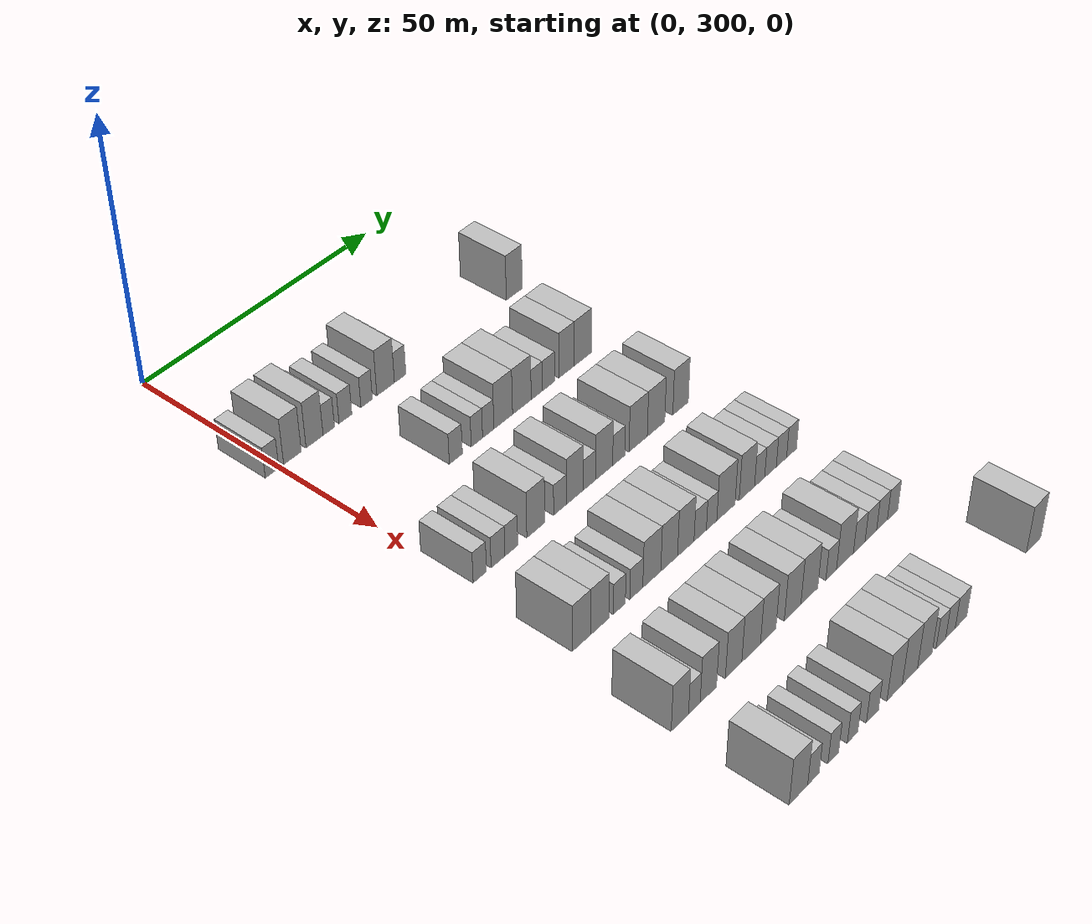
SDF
<sdf version="1.6">
 <world name="default">
  <model name="building_166">
   <static>1</static>
   <pose>25.0000 298.3592 0 0.000000 0.000000 0.000000</pose>
   <link name="link">
    <pose>0 0 3.00 0 0 0</pose>
    <collision name="collision"><geometry><box><size>10.0000 2.7973 6.0000</size></box></geometry></collision>
    <visual name="visual">
     <cast_shadows>0</cast_shadows>
     <geometry><box><size>10.0000 2.7973 6.0000</size></box></geometry>
     <material>
      <script>
       <uri>model://HANNAS_wall/materials/scripts</uri>
       <uri>model://HANNAS_wall/materials/textures</uri>
       <name>vrc/HANNAS_wall</name>
      </script>
     </material>
    </visual>
   </link>
  </model>
  <model name="building_167">
   <static>1</static>
   <pose>25.0000 302.6188 0 0.000000 0.000000 0.000000</pose>
   <link name="link">
    <pose>0 0 4.50 0 0 0</pose>
    <collision name="collision"><geometry><box><size>10.0000 3.7218 9.0000</size></box></geometry></collision>
    <visual name="visual">
     <cast_shadows>0</cast_shadows>
     <geometry><box><size>10.0000 3.7218 9.0000</size></box></geometry>
     <material>
      <script>
       <uri>model://HANNAS_wall/materials/scripts</uri>
       <uri>model://HANNAS_wall/materials/textures</uri>
       <name>vrc/HANNAS_wall</name>
      </script>
     </material>
    </visual>
   </link>
  </model>
  <model name="building_168">
   <static>1</static>
   <pose>25.0000 307.3051 0 0.000000 0.000000 0.000000</pose>
   <link name="link">
    <pose>0 0 4.50 0 0 0</pose>
    <collision name="collision"><geometry><box><size>10.0000 3.6508 9.0000</size></box></geometry></collision>
    <visual name="visual">
     <cast_shadows>0</cast_shadows>
     <geometry><box><size>10.0000 3.6508 9.0000</size></box></geometry>
     <material>
      <script>
       <uri>model://HANNAS_wall/materials/scripts</uri>
       <uri>model://HANNAS_wall/materials/textures</uri>
       <name>vrc/HANNAS_wall</name>
      </script>
     </material>
    </visual>
   </link>
  </model>
  <model name="building_169">
   <static>1</static>
   <pose>25.0000 310.3611 0 0.000000 0.000000 0.000000</pose>
   <link name="link">
    <pose>0 0 3.00 0 0 0</pose>
    <collision name="collision"><geometry><box><size>10.0000 2.4613 6.0000</size></box></geometry></collision>
    <visual name="visual">
     <cast_shadows>0</cast_shadows>
     <geometry><box><size>10.0000 2.4613 6.0000</size></box></geometry>
     <material>
      <script>
       <uri>model://HANNAS_wall/materials/scripts</uri>
       <uri>model://HANNAS_wall/materials/textures</uri>
       <name>vrc/HANNAS_wall</name>
      </script>
     </material>
    </visual>
   </link>
  </model>
  <model name="building_170">
   <static>1</static>
   <pose>25.0000 313.9952 0 0.000000 0.000000 0.000000</pose>
   <link name="link">
    <pose>0 0 3.00 0 0 0</pose>
    <collision name="collision"><geometry><box><size>10.0000 2.8068 6.0000</size></box></geometry></collision>
    <visual name="visual">
     <cast_shadows>0</cast_shadows>
     <geometry><box><size>10.0000 2.8068 6.0000</size></box></geometry>
     <material>
      <script>
       <uri>model://HANNAS_wall/materials/scripts</uri>
       <uri>model://HANNAS_wall/materials/textures</uri>
       <name>vrc/HANNAS_wall</name>
      </script>
     </material>
    </visual>
   </link>
  </model>
  <model name="building_171">
   <static>1</static>
   <pose>25.0000 318.6783 0 0.000000 0.000000 0.000000</pose>
   <link name="link">
    <pose>0 0 3.00 0 0 0</pose>
    <collision name="collision"><geometry><box><size>10.0000 2.5593 6.0000</size></box></geometry></collision>
    <visual name="visual">
     <cast_shadows>0</cast_shadows>
     <geometry><box><size>10.0000 2.5593 6.0000</size></box></geometry>
     <material>
      <script>
       <uri>model://HANNAS_wall/materials/scripts</uri>
       <uri>model://HANNAS_wall/materials/textures</uri>
       <name>vrc/HANNAS_wall</name>
      </script>
     </material>
    </visual>
   </link>
  </model>
  <model name="building_172">
   <static>1</static>
   <pose>25.0000 322.9405 0 0.000000 0.000000 0.000000</pose>
   <link name="link">
    <pose>0 0 4.50 0 0 0</pose>
    <collision name="collision"><geometry><box><size>10.0000 3.9652 9.0000</size></box></geometry></collision>
    <visual name="visual">
     <cast_shadows>0</cast_shadows>
     <geometry><box><size>10.0000 3.9652 9.0000</size></box></geometry>
     <material>
      <script>
       <uri>model://HANNAS_wall/materials/scripts</uri>
       <uri>model://HANNAS_wall/materials/textures</uri>
       <name>vrc/HANNAS_wall</name>
      </script>
     </material>
    </visual>
   </link>
  </model>
  <model name="building_173">
   <static>1</static>
   <pose>25.0000 326.2326 0 0.000000 0.000000 0.000000</pose>
   <link name="link">
    <pose>0 0 3.00 0 0 0</pose>
    <collision name="collision"><geometry><box><size>10.0000 2.6189 6.0000</size></box></geometry></collision>
    <visual name="visual">
     <cast_shadows>0</cast_shadows>
     <geometry><box><size>10.0000 2.6189 6.0000</size></box></geometry>
     <material>
      <script>
       <uri>model://HANNAS_wall/materials/scripts</uri>
       <uri>model://HANNAS_wall/materials/textures</uri>
       <name>vrc/HANNAS_wall</name>
      </script>
     </material>
    </visual>
   </link>
  </model>
  <model name="building_174">
   <static>1</static>
   <pose>25.0000 353.5034 0 0.000000 0.000000 0.000000</pose>
   <link name="link">
    <pose>0 0 4.50 0 0 0</pose>
    <collision name="collision"><geometry><box><size>10.0000 3.9742 9.0000</size></box></geometry></collision>
    <visual name="visual">
     <cast_shadows>0</cast_shadows>
     <geometry><box><size>10.0000 3.9742 9.0000</size></box></geometry>
     <material>
      <script>
       <uri>model://HANNAS_wall/materials/scripts</uri>
       <uri>model://HANNAS_wall/materials/textures</uri>
       <name>vrc/HANNAS_wall</name>
      </script>
     </material>
    </visual>
   </link>
  </model>
  <model name="building_336">
   <static>1</static>
   <pose>44.0000 317.9940 0 0.000000 0.000000 0.000000</pose>
   <link name="link">
    <pose>0 0 3.00 0 0 0</pose>
    <collision name="collision"><geometry><box><size>10.0000 2.9352 6.0000</size></box></geometry></collision>
    <visual name="visual">
     <cast_shadows>0</cast_shadows>
     <geometry><box><size>10.0000 2.9352 6.0000</size></box></geometry>
     <material>
      <script>
       <uri>model://HANNAS_wall/materials/scripts</uri>
       <uri>model://HANNAS_wall/materials/textures</uri>
       <name>vrc/HANNAS_wall</name>
      </script>
     </material>
    </visual>
   </link>
  </model>
  <model name="building_337">
   <static>1</static>
   <pose>44.0000 322.7504 0 0.000000 0.000000 0.000000</pose>
   <link name="link">
    <pose>0 0 3.00 0 0 0</pose>
    <collision name="collision"><geometry><box><size>10.0000 2.5776 6.0000</size></box></geometry></collision>
    <visual name="visual">
     <cast_shadows>0</cast_shadows>
     <geometry><box><size>10.0000 2.5776 6.0000</size></box></geometry>
     <material>
      <script>
       <uri>model://HANNAS_wall/materials/scripts</uri>
       <uri>model://HANNAS_wall/materials/textures</uri>
       <name>vrc/HANNAS_wall</name>
      </script>
     </material>
    </visual>
   </link>
  </model>
  <model name="building_338">
   <static>1</static>
   <pose>44.0000 325.3466 0 0.000000 0.000000 0.000000</pose>
   <link name="link">
    <pose>0 0 3.00 0 0 0</pose>
    <collision name="collision"><geometry><box><size>10.0000 2.6147 6.0000</size></box></geometry></collision>
    <visual name="visual">
     <cast_shadows>0</cast_shadows>
     <geometry><box><size>10.0000 2.6147 6.0000</size></box></geometry>
     <material>
      <script>
       <uri>model://HANNAS_wall/materials/scripts</uri>
       <uri>model://HANNAS_wall/materials/textures</uri>
       <name>vrc/HANNAS_wall</name>
      </script>
     </material>
    </visual>
   </link>
  </model>
  <model name="building_339">
   <static>1</static>
   <pose>44.0000 328.8182 0 0.000000 0.000000 0.000000</pose>
   <link name="link">
    <pose>0 0 4.50 0 0 0</pose>
    <collision name="collision"><geometry><box><size>10.0000 4.3285 9.0000</size></box></geometry></collision>
    <visual name="visual">
     <cast_shadows>0</cast_shadows>
     <geometry><box><size>10.0000 4.3285 9.0000</size></box></geometry>
     <material>
      <script>
       <uri>model://HANNAS_wall/materials/scripts</uri>
       <uri>model://HANNAS_wall/materials/textures</uri>
       <name>vrc/HANNAS_wall</name>
      </script>
     </material>
    </visual>
   </link>
  </model>
  <model name="building_340">
   <static>1</static>
   <pose>44.0000 333.1827 0 0.000000 0.000000 0.000000</pose>
   <link name="link">
    <pose>0 0 4.50 0 0 0</pose>
    <collision name="collision"><geometry><box><size>10.0000 4.4005 9.0000</size></box></geometry></collision>
    <visual name="visual">
     <cast_shadows>0</cast_shadows>
     <geometry><box><size>10.0000 4.4005 9.0000</size></box></geometry>
     <material>
      <script>
       <uri>model://HANNAS_wall/materials/scripts</uri>
       <uri>model://HANNAS_wall/materials/textures</uri>
       <name>vrc/HANNAS_wall</name>
      </script>
     </material>
    </visual>
   </link>
  </model>
  <model name="building_341">
   <static>1</static>
   <pose>44.0000 336.7279 0 0.000000 0.000000 0.000000</pose>
   <link name="link">
    <pose>0 0 3.00 0 0 0</pose>
    <collision name="collision"><geometry><box><size>10.0000 2.6898 6.0000</size></box></geometry></collision>
    <visual name="visual">
     <cast_shadows>0</cast_shadows>
     <geometry><box><size>10.0000 2.6898 6.0000</size></box></geometry>
     <material>
      <script>
       <uri>model://HANNAS_wall/materials/scripts</uri>
       <uri>model://HANNAS_wall/materials/textures</uri>
       <name>vrc/HANNAS_wall</name>
      </script>
     </material>
    </visual>
   </link>
  </model>
  <model name="building_342">
   <static>1</static>
   <pose>44.0000 339.5661 0 0.000000 0.000000 0.000000</pose>
   <link name="link">
    <pose>0 0 3.00 0 0 0</pose>
    <collision name="collision"><geometry><box><size>10.0000 2.9867 6.0000</size></box></geometry></collision>
    <visual name="visual">
     <cast_shadows>0</cast_shadows>
     <geometry><box><size>10.0000 2.9867 6.0000</size></box></geometry>
     <material>
      <script>
       <uri>model://HANNAS_wall/materials/scripts</uri>
       <uri>model://HANNAS_wall/materials/textures</uri>
       <name>vrc/HANNAS_wall</name>
      </script>
     </material>
    </visual>
   </link>
  </model>
  <model name="building_343">
   <static>1</static>
   <pose>44.0000 343.9354 0 0.000000 0.000000 0.000000</pose>
   <link name="link">
    <pose>0 0 4.50 0 0 0</pose>
    <collision name="collision"><geometry><box><size>10.0000 3.7518 9.0000</size></box></geometry></collision>
    <visual name="visual">
     <cast_shadows>0</cast_shadows>
     <geometry><box><size>10.0000 3.7518 9.0000</size></box></geometry>
     <material>
      <script>
       <uri>model://HANNAS_wall/materials/scripts</uri>
       <uri>model://HANNAS_wall/materials/textures</uri>
       <name>vrc/HANNAS_wall</name>
      </script>
     </material>
    </visual>
   </link>
  </model>
  <model name="building_344">
   <static>1</static>
   <pose>44.0000 347.9292 0 0.000000 0.000000 0.000000</pose>
   <link name="link">
    <pose>0 0 4.50 0 0 0</pose>
    <collision name="collision"><geometry><box><size>10.0000 4.2359 9.0000</size></box></geometry></collision>
    <visual name="visual">
     <cast_shadows>0</cast_shadows>
     <geometry><box><size>10.0000 4.2359 9.0000</size></box></geometry>
     <material>
      <script>
       <uri>model://HANNAS_wall/materials/scripts</uri>
       <uri>model://HANNAS_wall/materials/textures</uri>
       <name>vrc/HANNAS_wall</name>
      </script>
     </material>
    </visual>
   </link>
  </model>
  <model name="building_516">
   <static>1</static>
   <pose>63.0000 301.8173 0 0.000000 0.000000 0.000000</pose>
   <link name="link">
    <pose>0 0 3.00 0 0 0</pose>
    <collision name="collision"><geometry><box><size>10.0000 2.8320 6.0000</size></box></geometry></collision>
    <visual name="visual">
     <cast_shadows>0</cast_shadows>
     <geometry><box><size>10.0000 2.8320 6.0000</size></box></geometry>
     <material>
      <script>
       <uri>model://HANNAS_wall/materials/scripts</uri>
       <uri>model://HANNAS_wall/materials/textures</uri>
       <name>vrc/HANNAS_wall</name>
      </script>
     </material>
    </visual>
   </link>
  </model>
  <model name="building_517">
   <static>1</static>
   <pose>63.0000 305.7291 0 0.000000 0.000000 0.000000</pose>
   <link name="link">
    <pose>0 0 3.00 0 0 0</pose>
    <collision name="collision"><geometry><box><size>10.0000 2.9916 6.0000</size></box></geometry></collision>
    <visual name="visual">
     <cast_shadows>0</cast_shadows>
     <geometry><box><size>10.0000 2.9916 6.0000</size></box></geometry>
     <material>
      <script>
       <uri>model://HANNAS_wall/materials/scripts</uri>
       <uri>model://HANNAS_wall/materials/textures</uri>
       <name>vrc/HANNAS_wall</name>
      </script>
     </material>
    </visual>
   </link>
  </model>
  <model name="building_518">
   <static>1</static>
   <pose>63.0000 308.6289 0 0.000000 0.000000 0.000000</pose>
   <link name="link">
    <pose>0 0 3.00 0 0 0</pose>
    <collision name="collision"><geometry><box><size>10.0000 2.8080 6.0000</size></box></geometry></collision>
    <visual name="visual">
     <cast_shadows>0</cast_shadows>
     <geometry><box><size>10.0000 2.8080 6.0000</size></box></geometry>
     <material>
      <script>
       <uri>model://HANNAS_wall/materials/scripts</uri>
       <uri>model://HANNAS_wall/materials/textures</uri>
       <name>vrc/HANNAS_wall</name>
      </script>
     </material>
    </visual>
   </link>
  </model>
  <model name="building_519">
   <static>1</static>
   <pose>63.0000 314.0401 0 0.000000 0.000000 0.000000</pose>
   <link name="link">
    <pose>0 0 4.50 0 0 0</pose>
    <collision name="collision"><geometry><box><size>10.0000 4.0143 9.0000</size></box></geometry></collision>
    <visual name="visual">
     <cast_shadows>0</cast_shadows>
     <geometry><box><size>10.0000 4.0143 9.0000</size></box></geometry>
     <material>
      <script>
       <uri>model://HANNAS_wall/materials/scripts</uri>
       <uri>model://HANNAS_wall/materials/textures</uri>
       <name>vrc/HANNAS_wall</name>
      </script>
     </material>
    </visual>
   </link>
  </model>
  <model name="building_520">
   <static>1</static>
   <pose>63.0000 319.4968 0 0.000000 0.000000 0.000000</pose>
   <link name="link">
    <pose>0 0 3.00 0 0 0</pose>
    <collision name="collision"><geometry><box><size>10.0000 2.8991 6.0000</size></box></geometry></collision>
    <visual name="visual">
     <cast_shadows>0</cast_shadows>
     <geometry><box><size>10.0000 2.8991 6.0000</size></box></geometry>
     <material>
      <script>
       <uri>model://HANNAS_wall/materials/scripts</uri>
       <uri>model://HANNAS_wall/materials/textures</uri>
       <name>vrc/HANNAS_wall</name>
      </script>
     </material>
    </visual>
   </link>
  </model>
  <model name="building_521">
   <static>1</static>
   <pose>63.0000 322.8800 0 0.000000 0.000000 0.000000</pose>
   <link name="link">
    <pose>0 0 4.50 0 0 0</pose>
    <collision name="collision"><geometry><box><size>10.0000 3.8673 9.0000</size></box></geometry></collision>
    <visual name="visual">
     <cast_shadows>0</cast_shadows>
     <geometry><box><size>10.0000 3.8673 9.0000</size></box></geometry>
     <material>
      <script>
       <uri>model://HANNAS_wall/materials/scripts</uri>
       <uri>model://HANNAS_wall/materials/textures</uri>
       <name>vrc/HANNAS_wall</name>
      </script>
     </material>
    </visual>
   </link>
  </model>
  <model name="building_522">
   <static>1</static>
   <pose>63.0000 326.2391 0 0.000000 0.000000 0.000000</pose>
   <link name="link">
    <pose>0 0 3.00 0 0 0</pose>
    <collision name="collision"><geometry><box><size>10.0000 2.8509 6.0000</size></box></geometry></collision>
    <visual name="visual">
     <cast_shadows>0</cast_shadows>
     <geometry><box><size>10.0000 2.8509 6.0000</size></box></geometry>
     <material>
      <script>
       <uri>model://HANNAS_wall/materials/scripts</uri>
       <uri>model://HANNAS_wall/materials/textures</uri>
       <name>vrc/HANNAS_wall</name>
      </script>
     </material>
    </visual>
   </link>
  </model>
  <model name="building_523">
   <static>1</static>
   <pose>63.0000 329.7063 0 0.000000 0.000000 0.000000</pose>
   <link name="link">
    <pose>0 0 4.50 0 0 0</pose>
    <collision name="collision"><geometry><box><size>10.0000 4.0834 9.0000</size></box></geometry></collision>
    <visual name="visual">
     <cast_shadows>0</cast_shadows>
     <geometry><box><size>10.0000 4.0834 9.0000</size></box></geometry>
     <material>
      <script>
       <uri>model://HANNAS_wall/materials/scripts</uri>
       <uri>model://HANNAS_wall/materials/textures</uri>
       <name>vrc/HANNAS_wall</name>
      </script>
     </material>
    </visual>
   </link>
  </model>
  <model name="building_524">
   <static>1</static>
   <pose>63.0000 333.2103 0 0.000000 0.000000 0.000000</pose>
   <link name="link">
    <pose>0 0 3.00 0 0 0</pose>
    <collision name="collision"><geometry><box><size>10.0000 2.9246 6.0000</size></box></geometry></collision>
    <visual name="visual">
     <cast_shadows>0</cast_shadows>
     <geometry><box><size>10.0000 2.9246 6.0000</size></box></geometry>
     <material>
      <script>
       <uri>model://HANNAS_wall/materials/scripts</uri>
       <uri>model://HANNAS_wall/materials/textures</uri>
       <name>vrc/HANNAS_wall</name>
      </script>
     </material>
    </visual>
   </link>
  </model>
  <model name="building_525">
   <static>1</static>
   <pose>63.0000 337.8902 0 0.000000 0.000000 0.000000</pose>
   <link name="link">
    <pose>0 0 4.50 0 0 0</pose>
    <collision name="collision"><geometry><box><size>10.0000 4.4352 9.0000</size></box></geometry></collision>
    <visual name="visual">
     <cast_shadows>0</cast_shadows>
     <geometry><box><size>10.0000 4.4352 9.0000</size></box></geometry>
     <material>
      <script>
       <uri>model://HANNAS_wall/materials/scripts</uri>
       <uri>model://HANNAS_wall/materials/textures</uri>
       <name>vrc/HANNAS_wall</name>
      </script>
     </material>
    </visual>
   </link>
  </model>
  <model name="building_526">
   <static>1</static>
   <pose>63.0000 342.2646 0 0.000000 0.000000 0.000000</pose>
   <link name="link">
    <pose>0 0 4.50 0 0 0</pose>
    <collision name="collision"><geometry><box><size>10.0000 4.3136 9.0000</size></box></geometry></collision>
    <visual name="visual">
     <cast_shadows>0</cast_shadows>
     <geometry><box><size>10.0000 4.3136 9.0000</size></box></geometry>
     <material>
      <script>
       <uri>model://HANNAS_wall/materials/scripts</uri>
       <uri>model://HANNAS_wall/materials/textures</uri>
       <name>vrc/HANNAS_wall</name>
      </script>
     </material>
    </visual>
   </link>
  </model>
  <model name="building_527">
   <static>1</static>
   <pose>63.0000 348.3710 0 0.000000 0.000000 0.000000</pose>
   <link name="link">
    <pose>0 0 4.50 0 0 0</pose>
    <collision name="collision"><geometry><box><size>10.0000 3.8993 9.0000</size></box></geometry></collision>
    <visual name="visual">
     <cast_shadows>0</cast_shadows>
     <geometry><box><size>10.0000 3.8993 9.0000</size></box></geometry>
     <material>
      <script>
       <uri>model://HANNAS_wall/materials/scripts</uri>
       <uri>model://HANNAS_wall/materials/textures</uri>
       <name>vrc/HANNAS_wall</name>
      </script>
     </material>
    </visual>
   </link>
  </model>
  <model name="building_684">
   <static>1</static>
   <pose>82.0000 301.2287 0 0.000000 0.000000 0.000000</pose>
   <link name="link">
    <pose>0 0 4.50 0 0 0</pose>
    <collision name="collision"><geometry><box><size>10.0000 3.9058 9.0000</size></box></geometry></collision>
    <visual name="visual">
     <cast_shadows>0</cast_shadows>
     <geometry><box><size>10.0000 3.9058 9.0000</size></box></geometry>
     <material>
      <script>
       <uri>model://HANNAS_wall/materials/scripts</uri>
       <uri>model://HANNAS_wall/materials/textures</uri>
       <name>vrc/HANNAS_wall</name>
      </script>
     </material>
    </visual>
   </link>
  </model>
  <model name="building_685">
   <static>1</static>
   <pose>82.0000 305.1975 0 0.000000 0.000000 0.000000</pose>
   <link name="link">
    <pose>0 0 4.50 0 0 0</pose>
    <collision name="collision"><geometry><box><size>10.0000 4.0317 9.0000</size></box></geometry></collision>
    <visual name="visual">
     <cast_shadows>0</cast_shadows>
     <geometry><box><size>10.0000 4.0317 9.0000</size></box></geometry>
     <material>
      <script>
       <uri>model://HANNAS_wall/materials/scripts</uri>
       <uri>model://HANNAS_wall/materials/textures</uri>
       <name>vrc/HANNAS_wall</name>
      </script>
     </material>
    </visual>
   </link>
  </model>
  <model name="building_686">
   <static>1</static>
   <pose>82.0000 309.5510 0 0.000000 0.000000 0.000000</pose>
   <link name="link">
    <pose>0 0 3.00 0 0 0</pose>
    <collision name="collision"><geometry><box><size>10.0000 2.6753 6.0000</size></box></geometry></collision>
    <visual name="visual">
     <cast_shadows>0</cast_shadows>
     <geometry><box><size>10.0000 2.6753 6.0000</size></box></geometry>
     <material>
      <script>
       <uri>model://HANNAS_wall/materials/scripts</uri>
       <uri>model://HANNAS_wall/materials/textures</uri>
       <name>vrc/HANNAS_wall</name>
      </script>
     </material>
    </visual>
   </link>
  </model>
  <model name="building_687">
   <static>1</static>
   <pose>82.0000 313.3539 0 0.000000 0.000000 0.000000</pose>
   <link name="link">
    <pose>0 0 3.00 0 0 0</pose>
    <collision name="collision"><geometry><box><size>10.0000 2.9305 6.0000</size></box></geometry></collision>
    <visual name="visual">
     <cast_shadows>0</cast_shadows>
     <geometry><box><size>10.0000 2.9305 6.0000</size></box></geometry>
     <material>
      <script>
       <uri>model://HANNAS_wall/materials/scripts</uri>
       <uri>model://HANNAS_wall/materials/textures</uri>
       <name>vrc/HANNAS_wall</name>
      </script>
     </material>
    </visual>
   </link>
  </model>
  <model name="building_688">
   <static>1</static>
   <pose>82.0000 316.8846 0 0.000000 0.000000 0.000000</pose>
   <link name="link">
    <pose>0 0 4.50 0 0 0</pose>
    <collision name="collision"><geometry><box><size>10.0000 4.1307 9.0000</size></box></geometry></collision>
    <visual name="visual">
     <cast_shadows>0</cast_shadows>
     <geometry><box><size>10.0000 4.1307 9.0000</size></box></geometry>
     <material>
      <script>
       <uri>model://HANNAS_wall/materials/scripts</uri>
       <uri>model://HANNAS_wall/materials/textures</uri>
       <name>vrc/HANNAS_wall</name>
      </script>
     </material>
    </visual>
   </link>
  </model>
  <model name="building_689">
   <static>1</static>
   <pose>82.0000 320.8887 0 0.000000 0.000000 0.000000</pose>
   <link name="link">
    <pose>0 0 4.50 0 0 0</pose>
    <collision name="collision"><geometry><box><size>10.0000 3.8775 9.0000</size></box></geometry></collision>
    <visual name="visual">
     <cast_shadows>0</cast_shadows>
     <geometry><box><size>10.0000 3.8775 9.0000</size></box></geometry>
     <material>
      <script>
       <uri>model://HANNAS_wall/materials/scripts</uri>
       <uri>model://HANNAS_wall/materials/textures</uri>
       <name>vrc/HANNAS_wall</name>
      </script>
     </material>
    </visual>
   </link>
  </model>
  <model name="building_690">
   <static>1</static>
   <pose>82.0000 324.7687 0 0.000000 0.000000 0.000000</pose>
   <link name="link">
    <pose>0 0 4.50 0 0 0</pose>
    <collision name="collision"><geometry><box><size>10.0000 3.8824 9.0000</size></box></geometry></collision>
    <visual name="visual">
     <cast_shadows>0</cast_shadows>
     <geometry><box><size>10.0000 3.8824 9.0000</size></box></geometry>
     <material>
      <script>
       <uri>model://HANNAS_wall/materials/scripts</uri>
       <uri>model://HANNAS_wall/materials/textures</uri>
       <name>vrc/HANNAS_wall</name>
      </script>
     </material>
    </visual>
   </link>
  </model>
  <model name="building_691">
   <static>1</static>
   <pose>82.0000 328.1856 0 0.000000 0.000000 0.000000</pose>
   <link name="link">
    <pose>0 0 3.00 0 0 0</pose>
    <collision name="collision"><geometry><box><size>10.0000 2.9515 6.0000</size></box></geometry></collision>
    <visual name="visual">
     <cast_shadows>0</cast_shadows>
     <geometry><box><size>10.0000 2.9515 6.0000</size></box></geometry>
     <material>
      <script>
       <uri>model://HANNAS_wall/materials/scripts</uri>
       <uri>model://HANNAS_wall/materials/textures</uri>
       <name>vrc/HANNAS_wall</name>
      </script>
     </material>
    </visual>
   </link>
  </model>
  <model name="building_692">
   <static>1</static>
   <pose>82.0000 330.9195 0 0.000000 0.000000 0.000000</pose>
   <link name="link">
    <pose>0 0 3.00 0 0 0</pose>
    <collision name="collision"><geometry><box><size>10.0000 2.5163 6.0000</size></box></geometry></collision>
    <visual name="visual">
     <cast_shadows>0</cast_shadows>
     <geometry><box><size>10.0000 2.5163 6.0000</size></box></geometry>
     <material>
      <script>
       <uri>model://HANNAS_wall/materials/scripts</uri>
       <uri>model://HANNAS_wall/materials/textures</uri>
       <name>vrc/HANNAS_wall</name>
      </script>
     </material>
    </visual>
   </link>
  </model>
  <model name="building_693">
   <static>1</static>
   <pose>82.0000 334.4066 0 0.000000 0.000000 0.000000</pose>
   <link name="link">
    <pose>0 0 4.50 0 0 0</pose>
    <collision name="collision"><geometry><box><size>10.0000 4.4580 9.0000</size></box></geometry></collision>
    <visual name="visual">
     <cast_shadows>0</cast_shadows>
     <geometry><box><size>10.0000 4.4580 9.0000</size></box></geometry>
     <material>
      <script>
       <uri>model://HANNAS_wall/materials/scripts</uri>
       <uri>model://HANNAS_wall/materials/textures</uri>
       <name>vrc/HANNAS_wall</name>
      </script>
     </material>
    </visual>
   </link>
  </model>
  <model name="building_694">
   <static>1</static>
   <pose>82.0000 339.5544 0 0.000000 0.000000 0.000000</pose>
   <link name="link">
    <pose>0 0 4.50 0 0 0</pose>
    <collision name="collision"><geometry><box><size>10.0000 3.8377 9.0000</size></box></geometry></collision>
    <visual name="visual">
     <cast_shadows>0</cast_shadows>
     <geometry><box><size>10.0000 3.8377 9.0000</size></box></geometry>
     <material>
      <script>
       <uri>model://HANNAS_wall/materials/scripts</uri>
       <uri>model://HANNAS_wall/materials/textures</uri>
       <name>vrc/HANNAS_wall</name>
      </script>
     </material>
    </visual>
   </link>
  </model>
  <model name="building_695">
   <static>1</static>
   <pose>82.0000 342.7477 0 0.000000 0.000000 0.000000</pose>
   <link name="link">
    <pose>0 0 3.00 0 0 0</pose>
    <collision name="collision"><geometry><box><size>10.0000 2.5488 6.0000</size></box></geometry></collision>
    <visual name="visual">
     <cast_shadows>0</cast_shadows>
     <geometry><box><size>10.0000 2.5488 6.0000</size></box></geometry>
     <material>
      <script>
       <uri>model://HANNAS_wall/materials/scripts</uri>
       <uri>model://HANNAS_wall/materials/textures</uri>
       <name>vrc/HANNAS_wall</name>
      </script>
     </material>
    </visual>
   </link>
  </model>
  <model name="building_696">
   <static>1</static>
   <pose>82.0000 345.5026 0 0.000000 0.000000 0.000000</pose>
   <link name="link">
    <pose>0 0 3.00 0 0 0</pose>
    <collision name="collision"><geometry><box><size>10.0000 2.9610 6.0000</size></box></geometry></collision>
    <visual name="visual">
     <cast_shadows>0</cast_shadows>
     <geometry><box><size>10.0000 2.9610 6.0000</size></box></geometry>
     <material>
      <script>
       <uri>model://HANNAS_wall/materials/scripts</uri>
       <uri>model://HANNAS_wall/materials/textures</uri>
       <name>vrc/HANNAS_wall</name>
      </script>
     </material>
    </visual>
   </link>
  </model>
  <model name="building_697">
   <static>1</static>
   <pose>82.0000 348.3018 0 0.000000 0.000000 0.000000</pose>
   <link name="link">
    <pose>0 0 3.00 0 0 0</pose>
    <collision name="collision"><geometry><box><size>10.0000 2.6374 6.0000</size></box></geometry></collision>
    <visual name="visual">
     <cast_shadows>0</cast_shadows>
     <geometry><box><size>10.0000 2.6374 6.0000</size></box></geometry>
     <material>
      <script>
       <uri>model://HANNAS_wall/materials/scripts</uri>
       <uri>model://HANNAS_wall/materials/textures</uri>
       <name>vrc/HANNAS_wall</name>
      </script>
     </material>
    </visual>
   </link>
  </model>
  <model name="building_698">
   <static>1</static>
   <pose>82.0000 350.8970 0 0.000000 0.000000 0.000000</pose>
   <link name="link">
    <pose>0 0 3.00 0 0 0</pose>
    <collision name="collision"><geometry><box><size>10.0000 2.5532 6.0000</size></box></geometry></collision>
    <visual name="visual">
     <cast_shadows>0</cast_shadows>
     <geometry><box><size>10.0000 2.5532 6.0000</size></box></geometry>
     <material>
      <script>
       <uri>model://HANNAS_wall/materials/scripts</uri>
       <uri>model://HANNAS_wall/materials/textures</uri>
       <name>vrc/HANNAS_wall</name>
      </script>
     </material>
    </visual>
   </link>
  </model>
  <model name="building_868">
   <static>1</static>
   <pose>101.0000 298.5542 0 0.000000 0.000000 0.000000</pose>
   <link name="link">
    <pose>0 0 4.50 0 0 0</pose>
    <collision name="collision"><geometry><box><size>10.0000 3.7506 9.0000</size></box></geometry></collision>
    <visual name="visual">
     <cast_shadows>0</cast_shadows>
     <geometry><box><size>10.0000 3.7506 9.0000</size></box></geometry>
     <material>
      <script>
       <uri>model://HANNAS_wall/materials/scripts</uri>
       <uri>model://HANNAS_wall/materials/textures</uri>
       <name>vrc/HANNAS_wall</name>
      </script>
     </material>
    </visual>
   </link>
  </model>
  <model name="building_869">
   <static>1</static>
   <pose>101.0000 301.7054 0 0.000000 0.000000 0.000000</pose>
   <link name="link">
    <pose>0 0 3.00 0 0 0</pose>
    <collision name="collision"><geometry><box><size>10.0000 2.5519 6.0000</size></box></geometry></collision>
    <visual name="visual">
     <cast_shadows>0</cast_shadows>
     <geometry><box><size>10.0000 2.5519 6.0000</size></box></geometry>
     <material>
      <script>
       <uri>model://HANNAS_wall/materials/scripts</uri>
       <uri>model://HANNAS_wall/materials/textures</uri>
       <name>vrc/HANNAS_wall</name>
      </script>
     </material>
    </visual>
   </link>
  </model>
  <model name="building_870">
   <static>1</static>
   <pose>101.0000 304.8027 0 0.000000 0.000000 0.000000</pose>
   <link name="link">
    <pose>0 0 4.50 0 0 0</pose>
    <collision name="collision"><geometry><box><size>10.0000 3.6427 9.0000</size></box></geometry></collision>
    <visual name="visual">
     <cast_shadows>0</cast_shadows>
     <geometry><box><size>10.0000 3.6427 9.0000</size></box></geometry>
     <material>
      <script>
       <uri>model://HANNAS_wall/materials/scripts</uri>
       <uri>model://HANNAS_wall/materials/textures</uri>
       <name>vrc/HANNAS_wall</name>
      </script>
     </material>
    </visual>
   </link>
  </model>
  <model name="building_871">
   <static>1</static>
   <pose>101.0000 310.4875 0 0.000000 0.000000 0.000000</pose>
   <link name="link">
    <pose>0 0 4.50 0 0 0</pose>
    <collision name="collision"><geometry><box><size>10.0000 3.7268 9.0000</size></box></geometry></collision>
    <visual name="visual">
     <cast_shadows>0</cast_shadows>
     <geometry><box><size>10.0000 3.7268 9.0000</size></box></geometry>
     <material>
      <script>
       <uri>model://HANNAS_wall/materials/scripts</uri>
       <uri>model://HANNAS_wall/materials/textures</uri>
       <name>vrc/HANNAS_wall</name>
      </script>
     </material>
    </visual>
   </link>
  </model>
  <model name="building_872">
   <static>1</static>
   <pose>101.0000 314.5076 0 0.000000 0.000000 0.000000</pose>
   <link name="link">
    <pose>0 0 4.50 0 0 0</pose>
    <collision name="collision"><geometry><box><size>10.0000 4.3134 9.0000</size></box></geometry></collision>
    <visual name="visual">
     <cast_shadows>0</cast_shadows>
     <geometry><box><size>10.0000 4.3134 9.0000</size></box></geometry>
     <material>
      <script>
       <uri>model://HANNAS_wall/materials/scripts</uri>
       <uri>model://HANNAS_wall/materials/textures</uri>
       <name>vrc/HANNAS_wall</name>
      </script>
     </material>
    </visual>
   </link>
  </model>
  <model name="building_873">
   <static>1</static>
   <pose>101.0000 318.4715 0 0.000000 0.000000 0.000000</pose>
   <link name="link">
    <pose>0 0 4.50 0 0 0</pose>
    <collision name="collision"><geometry><box><size>10.0000 3.6144 9.0000</size></box></geometry></collision>
    <visual name="visual">
     <cast_shadows>0</cast_shadows>
     <geometry><box><size>10.0000 3.6144 9.0000</size></box></geometry>
     <material>
      <script>
       <uri>model://HANNAS_wall/materials/scripts</uri>
       <uri>model://HANNAS_wall/materials/textures</uri>
       <name>vrc/HANNAS_wall</name>
      </script>
     </material>
    </visual>
   </link>
  </model>
  <model name="building_874">
   <static>1</static>
   <pose>101.0000 324.2664 0 0.000000 0.000000 0.000000</pose>
   <link name="link">
    <pose>0 0 4.50 0 0 0</pose>
    <collision name="collision"><geometry><box><size>10.0000 3.9755 9.0000</size></box></geometry></collision>
    <visual name="visual">
     <cast_shadows>0</cast_shadows>
     <geometry><box><size>10.0000 3.9755 9.0000</size></box></geometry>
     <material>
      <script>
       <uri>model://HANNAS_wall/materials/scripts</uri>
       <uri>model://HANNAS_wall/materials/textures</uri>
       <name>vrc/HANNAS_wall</name>
      </script>
     </material>
    </visual>
   </link>
  </model>
  <model name="building_875">
   <static>1</static>
   <pose>101.0000 328.3099 0 0.000000 0.000000 0.000000</pose>
   <link name="link">
    <pose>0 0 4.50 0 0 0</pose>
    <collision name="collision"><geometry><box><size>10.0000 4.1115 9.0000</size></box></geometry></collision>
    <visual name="visual">
     <cast_shadows>0</cast_shadows>
     <geometry><box><size>10.0000 4.1115 9.0000</size></box></geometry>
     <material>
      <script>
       <uri>model://HANNAS_wall/materials/scripts</uri>
       <uri>model://HANNAS_wall/materials/textures</uri>
       <name>vrc/HANNAS_wall</name>
      </script>
     </material>
    </visual>
   </link>
  </model>
  <model name="building_876">
   <static>1</static>
   <pose>101.0000 333.6834 0 0.000000 0.000000 0.000000</pose>
   <link name="link">
    <pose>0 0 3.00 0 0 0</pose>
    <collision name="collision"><geometry><box><size>10.0000 2.6354 6.0000</size></box></geometry></collision>
    <visual name="visual">
     <cast_shadows>0</cast_shadows>
     <geometry><box><size>10.0000 2.6354 6.0000</size></box></geometry>
     <material>
      <script>
       <uri>model://HANNAS_wall/materials/scripts</uri>
       <uri>model://HANNAS_wall/materials/textures</uri>
       <name>vrc/HANNAS_wall</name>
      </script>
     </material>
    </visual>
   </link>
  </model>
  <model name="building_877">
   <static>1</static>
   <pose>101.0000 337.1257 0 0.000000 0.000000 0.000000</pose>
   <link name="link">
    <pose>0 0 4.50 0 0 0</pose>
    <collision name="collision"><geometry><box><size>10.0000 4.2492 9.0000</size></box></geometry></collision>
    <visual name="visual">
     <cast_shadows>0</cast_shadows>
     <geometry><box><size>10.0000 4.2492 9.0000</size></box></geometry>
     <material>
      <script>
       <uri>model://HANNAS_wall/materials/scripts</uri>
       <uri>model://HANNAS_wall/materials/textures</uri>
       <name>vrc/HANNAS_wall</name>
      </script>
     </material>
    </visual>
   </link>
  </model>
  <model name="building_878">
   <static>1</static>
   <pose>101.0000 340.7389 0 0.000000 0.000000 0.000000</pose>
   <link name="link">
    <pose>0 0 3.00 0 0 0</pose>
    <collision name="collision"><geometry><box><size>10.0000 2.9773 6.0000</size></box></geometry></collision>
    <visual name="visual">
     <cast_shadows>0</cast_shadows>
     <geometry><box><size>10.0000 2.9773 6.0000</size></box></geometry>
     <material>
      <script>
       <uri>model://HANNAS_wall/materials/scripts</uri>
       <uri>model://HANNAS_wall/materials/textures</uri>
       <name>vrc/HANNAS_wall</name>
      </script>
     </material>
    </visual>
   </link>
  </model>
  <model name="building_879">
   <static>1</static>
   <pose>101.0000 343.7146 0 0.000000 0.000000 0.000000</pose>
   <link name="link">
    <pose>0 0 3.00 0 0 0</pose>
    <collision name="collision"><geometry><box><size>10.0000 2.9740 6.0000</size></box></geometry></collision>
    <visual name="visual">
     <cast_shadows>0</cast_shadows>
     <geometry><box><size>10.0000 2.9740 6.0000</size></box></geometry>
     <material>
      <script>
       <uri>model://HANNAS_wall/materials/scripts</uri>
       <uri>model://HANNAS_wall/materials/textures</uri>
       <name>vrc/HANNAS_wall</name>
      </script>
     </material>
    </visual>
   </link>
  </model>
  <model name="building_880">
   <static>1</static>
   <pose>101.0000 346.6010 0 0.000000 0.000000 0.000000</pose>
   <link name="link">
    <pose>0 0 3.00 0 0 0</pose>
    <collision name="collision"><geometry><box><size>10.0000 2.7989 6.0000</size></box></geometry></collision>
    <visual name="visual">
     <cast_shadows>0</cast_shadows>
     <geometry><box><size>10.0000 2.7989 6.0000</size></box></geometry>
     <material>
      <script>
       <uri>model://HANNAS_wall/materials/scripts</uri>
       <uri>model://HANNAS_wall/materials/textures</uri>
       <name>vrc/HANNAS_wall</name>
      </script>
     </material>
    </visual>
   </link>
  </model>
  <model name="building_881">
   <static>1</static>
   <pose>101.0000 349.3717 0 0.000000 0.000000 0.000000</pose>
   <link name="link">
    <pose>0 0 3.00 0 0 0</pose>
    <collision name="collision"><geometry><box><size>10.0000 2.7424 6.0000</size></box></geometry></collision>
    <visual name="visual">
     <cast_shadows>0</cast_shadows>
     <geometry><box><size>10.0000 2.7424 6.0000</size></box></geometry>
     <material>
      <script>
       <uri>model://HANNAS_wall/materials/scripts</uri>
       <uri>model://HANNAS_wall/materials/textures</uri>
       <name>vrc/HANNAS_wall</name>
      </script>
     </material>
    </visual>
   </link>
  </model>
  <model name="building_1050">
   <static>1</static>
   <pose>120.0000 298.6565 0 0.000000 0.000000 0.000000</pose>
   <link name="link">
    <pose>0 0 4.50 0 0 0</pose>
    <collision name="collision"><geometry><box><size>10.0000 4.0960 9.0000</size></box></geometry></collision>
    <visual name="visual">
     <cast_shadows>0</cast_shadows>
     <geometry><box><size>10.0000 4.0960 9.0000</size></box></geometry>
     <material>
      <script>
       <uri>model://HANNAS_wall/materials/scripts</uri>
       <uri>model://HANNAS_wall/materials/textures</uri>
       <name>vrc/HANNAS_wall</name>
      </script>
     </material>
    </visual>
   </link>
  </model>
  <model name="building_1051">
   <static>1</static>
   <pose>120.0000 301.9949 0 0.000000 0.000000 0.000000</pose>
   <link name="link">
    <pose>0 0 3.00 0 0 0</pose>
    <collision name="collision"><geometry><box><size>10.0000 2.5808 6.0000</size></box></geometry></collision>
    <visual name="visual">
     <cast_shadows>0</cast_shadows>
     <geometry><box><size>10.0000 2.5808 6.0000</size></box></geometry>
     <material>
      <script>
       <uri>model://HANNAS_wall/materials/scripts</uri>
       <uri>model://HANNAS_wall/materials/textures</uri>
       <name>vrc/HANNAS_wall</name>
      </script>
     </material>
    </visual>
   </link>
  </model>
  <model name="building_1052">
   <static>1</static>
   <pose>120.0000 306.5039 0 0.000000 0.000000 0.000000</pose>
   <link name="link">
    <pose>0 0 3.00 0 0 0</pose>
    <collision name="collision"><geometry><box><size>10.0000 2.4372 6.0000</size></box></geometry></collision>
    <visual name="visual">
     <cast_shadows>0</cast_shadows>
     <geometry><box><size>10.0000 2.4372 6.0000</size></box></geometry>
     <material>
      <script>
       <uri>model://HANNAS_wall/materials/scripts</uri>
       <uri>model://HANNAS_wall/materials/textures</uri>
       <name>vrc/HANNAS_wall</name>
      </script>
     </material>
    </visual>
   </link>
  </model>
  <model name="building_1053">
   <static>1</static>
   <pose>120.0000 310.9509 0 0.000000 0.000000 0.000000</pose>
   <link name="link">
    <pose>0 0 3.00 0 0 0</pose>
    <collision name="collision"><geometry><box><size>10.0000 2.4566 6.0000</size></box></geometry></collision>
    <visual name="visual">
     <cast_shadows>0</cast_shadows>
     <geometry><box><size>10.0000 2.4566 6.0000</size></box></geometry>
     <material>
      <script>
       <uri>model://HANNAS_wall/materials/scripts</uri>
       <uri>model://HANNAS_wall/materials/textures</uri>
       <name>vrc/HANNAS_wall</name>
      </script>
     </material>
    </visual>
   </link>
  </model>
  <model name="building_1054">
   <static>1</static>
   <pose>120.0000 315.6303 0 0.000000 0.000000 0.000000</pose>
   <link name="link">
    <pose>0 0 3.00 0 0 0</pose>
    <collision name="collision"><geometry><box><size>10.0000 2.9023 6.0000</size></box></geometry></collision>
    <visual name="visual">
     <cast_shadows>0</cast_shadows>
     <geometry><box><size>10.0000 2.9023 6.0000</size></box></geometry>
     <material>
      <script>
       <uri>model://HANNAS_wall/materials/scripts</uri>
       <uri>model://HANNAS_wall/materials/textures</uri>
       <name>vrc/HANNAS_wall</name>
      </script>
     </material>
    </visual>
   </link>
  </model>
  <model name="building_1055">
   <static>1</static>
   <pose>120.0000 320.9421 0 0.000000 0.000000 0.000000</pose>
   <link name="link">
    <pose>0 0 4.50 0 0 0</pose>
    <collision name="collision"><geometry><box><size>10.0000 3.7212 9.0000</size></box></geometry></collision>
    <visual name="visual">
     <cast_shadows>0</cast_shadows>
     <geometry><box><size>10.0000 3.7212 9.0000</size></box></geometry>
     <material>
      <script>
       <uri>model://HANNAS_wall/materials/scripts</uri>
       <uri>model://HANNAS_wall/materials/textures</uri>
       <name>vrc/HANNAS_wall</name>
      </script>
     </material>
    </visual>
   </link>
  </model>
  <model name="building_1056">
   <static>1</static>
   <pose>120.0000 324.6794 0 0.000000 0.000000 0.000000</pose>
   <link name="link">
    <pose>0 0 4.50 0 0 0</pose>
    <collision name="collision"><geometry><box><size>10.0000 3.7535 9.0000</size></box></geometry></collision>
    <visual name="visual">
     <cast_shadows>0</cast_shadows>
     <geometry><box><size>10.0000 3.7535 9.0000</size></box></geometry>
     <material>
      <script>
       <uri>model://HANNAS_wall/materials/scripts</uri>
       <uri>model://HANNAS_wall/materials/textures</uri>
       <name>vrc/HANNAS_wall</name>
      </script>
     </material>
    </visual>
   </link>
  </model>
  <model name="building_1057">
   <static>1</static>
   <pose>120.0000 328.3757 0 0.000000 0.000000 0.000000</pose>
   <link name="link">
    <pose>0 0 4.50 0 0 0</pose>
    <collision name="collision"><geometry><box><size>10.0000 3.6389 9.0000</size></box></geometry></collision>
    <visual name="visual">
     <cast_shadows>0</cast_shadows>
     <geometry><box><size>10.0000 3.6389 9.0000</size></box></geometry>
     <material>
      <script>
       <uri>model://HANNAS_wall/materials/scripts</uri>
       <uri>model://HANNAS_wall/materials/textures</uri>
       <name>vrc/HANNAS_wall</name>
      </script>
     </material>
    </visual>
   </link>
  </model>
  <model name="building_1058">
   <static>1</static>
   <pose>120.0000 332.4074 0 0.000000 0.000000 0.000000</pose>
   <link name="link">
    <pose>0 0 3.00 0 0 0</pose>
    <collision name="collision"><geometry><box><size>10.0000 2.4246 6.0000</size></box></geometry></collision>
    <visual name="visual">
     <cast_shadows>0</cast_shadows>
     <geometry><box><size>10.0000 2.4246 6.0000</size></box></geometry>
     <material>
      <script>
       <uri>model://HANNAS_wall/materials/scripts</uri>
       <uri>model://HANNAS_wall/materials/textures</uri>
       <name>vrc/HANNAS_wall</name>
      </script>
     </material>
    </visual>
   </link>
  </model>
  <model name="building_1059">
   <static>1</static>
   <pose>120.0000 334.8489 0 0.000000 0.000000 0.000000</pose>
   <link name="link">
    <pose>0 0 3.00 0 0 0</pose>
    <collision name="collision"><geometry><box><size>10.0000 2.4584 6.0000</size></box></geometry></collision>
    <visual name="visual">
     <cast_shadows>0</cast_shadows>
     <geometry><box><size>10.0000 2.4584 6.0000</size></box></geometry>
     <material>
      <script>
       <uri>model://HANNAS_wall/materials/scripts</uri>
       <uri>model://HANNAS_wall/materials/textures</uri>
       <name>vrc/HANNAS_wall</name>
      </script>
     </material>
    </visual>
   </link>
  </model>
  <model name="building_1060">
   <static>1</static>
   <pose>120.0000 337.5760 0 0.000000 0.000000 0.000000</pose>
   <link name="link">
    <pose>0 0 3.00 0 0 0</pose>
    <collision name="collision"><geometry><box><size>10.0000 2.9958 6.0000</size></box></geometry></collision>
    <visual name="visual">
     <cast_shadows>0</cast_shadows>
     <geometry><box><size>10.0000 2.9958 6.0000</size></box></geometry>
     <material>
      <script>
       <uri>model://HANNAS_wall/materials/scripts</uri>
       <uri>model://HANNAS_wall/materials/textures</uri>
       <name>vrc/HANNAS_wall</name>
      </script>
     </material>
    </visual>
   </link>
  </model>
  <model name="building_1061">
   <static>1</static>
   <pose>120.0000 357.0470 0 0.000000 0.000000 0.000000</pose>
   <link name="link">
    <pose>0 0 4.50 0 0 0</pose>
    <collision name="collision"><geometry><box><size>10.0000 3.9821 9.0000</size></box></geometry></collision>
    <visual name="visual">
     <cast_shadows>0</cast_shadows>
     <geometry><box><size>10.0000 3.9821 9.0000</size></box></geometry>
     <material>
      <script>
       <uri>model://HANNAS_wall/materials/scripts</uri>
       <uri>model://HANNAS_wall/materials/textures</uri>
       <name>vrc/HANNAS_wall</name>
      </script>
     </material>
    </visual>
   </link>
  </model>
 </world>
</sdf>
